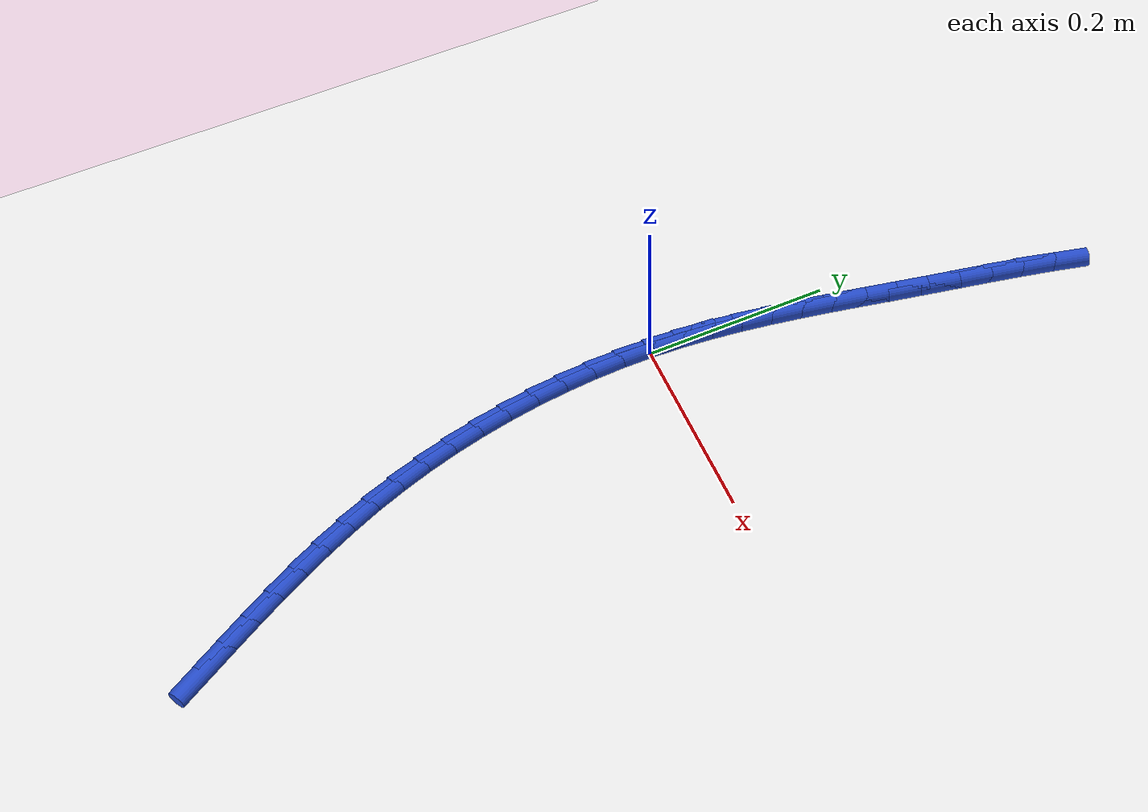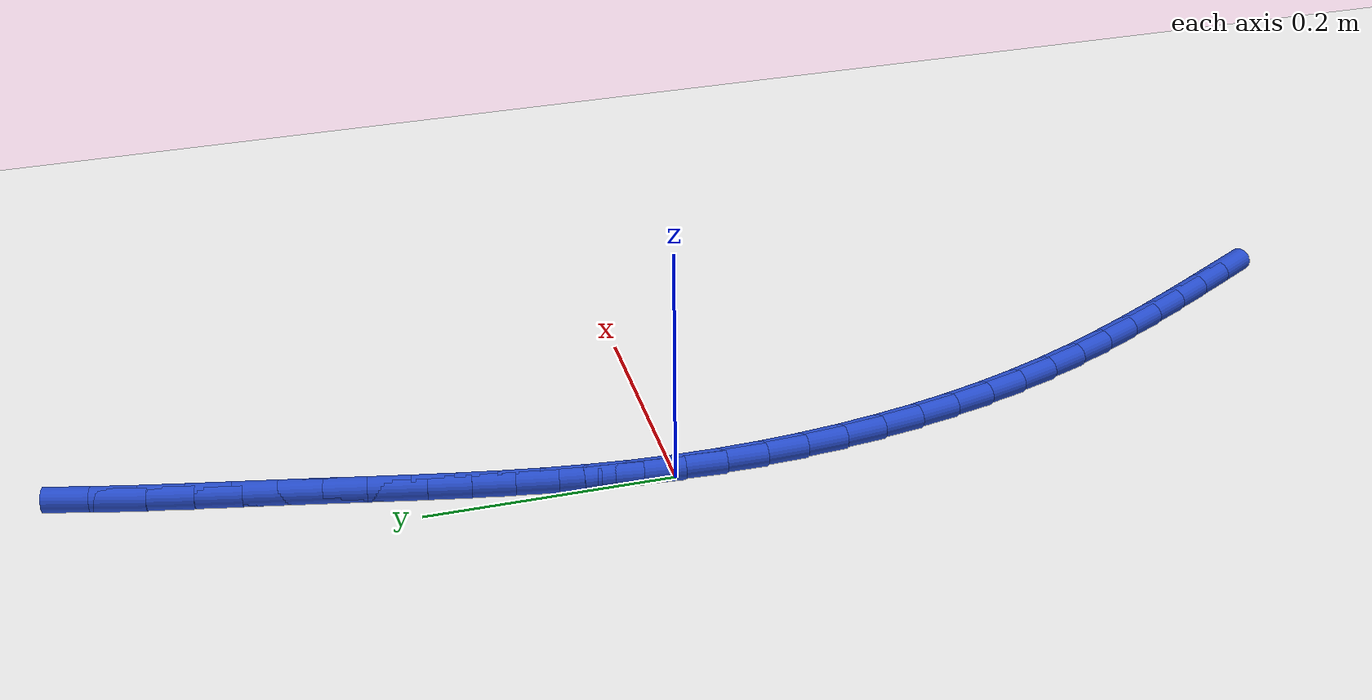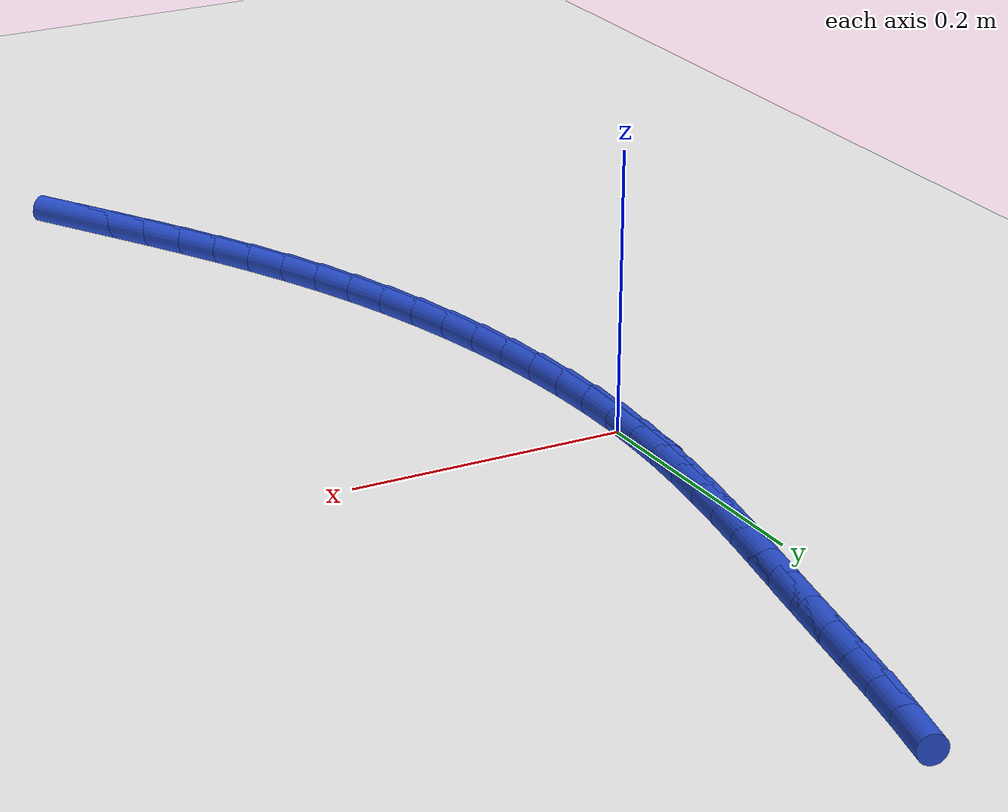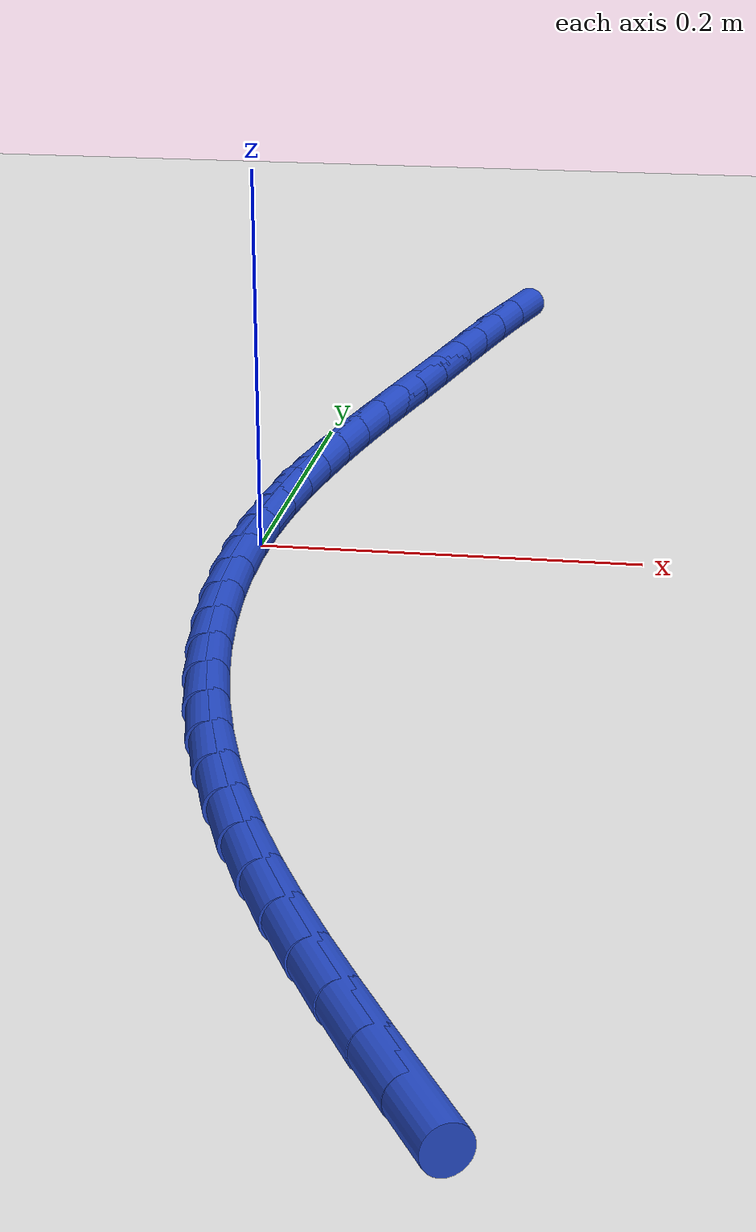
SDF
<sdf version="1.6">
 <world name="default">
  <model name="ground_plane">
   <static>1</static>
   <link name="link">
    <collision name="collision">
     <geometry><plane><normal>0 0 1</normal><size>100 100</size></plane></geometry>
     <surface><friction><ode><mu>100</mu><mu2>50</mu2></ode></friction></surface>
    </collision>
    <visual name="visual">
     <cast_shadows>0</cast_shadows>
     <geometry><plane><normal>0 0 1</normal><size>100 100</size></plane></geometry>
     <material>
      <script><uri>file://media/materials/scripts/gazebo.material</uri><name>Gazebo/WhiteGlow</name></script>
     </material>
    </visual>
   </link>
  </model>
  <model name="line">
   <link name="link_0">
    <pose>2.0816681711721685e-17 -4.163336342344337e-17 0.01 0 1.57 1.5177850047014827</pose>
    <collision name="collision">
     <geometry><cylinder><radius>0.01</radius><length>0.08</length></cylinder></geometry>
    </collision>
    <visual name="visual">
     <material>
      <script><name>Gazebo/Blue</name><uri>file://media/materials/scripts/gazebo.material</uri></script>
     </material>
     <geometry><cylinder><radius>0.01</radius><length>0.08</length></cylinder></geometry>
    </visual>
   </link>
   <link name="link_1">
    <pose>0.0017510972646374745 0.0330015660207481 0.01 0 1.57 1.479769540509891</pose>
    <collision name="collision">
     <geometry><cylinder><radius>0.01</radius><length>0.08</length></cylinder></geometry>
    </collision>
    <visual name="visual">
     <material>
      <script><name>Gazebo/Blue</name><uri>file://media/materials/scripts/gazebo.material</uri></script>
     </material>
     <geometry><cylinder><radius>0.01</radius><length>0.08</length></cylinder></geometry>
    </visual>
   </link>
   <link name="link_2">
    <pose>0.004742166672405374 0.06576998235816929 0.01 0 1.57 1.446837215099269</pose>
    <collision name="collision">
     <geometry><cylinder><radius>0.01</radius><length>0.08</length></cylinder></geometry>
    </collision>
    <visual name="visual">
     <material>
      <script><name>Gazebo/Blue</name><uri>file://media/materials/scripts/gazebo.material</uri></script>
     </material>
     <geometry><cylinder><radius>0.01</radius><length>0.08</length></cylinder></geometry>
    </visual>
   </link>
   <link name="link_3">
    <pose>0.008809686094679404 0.09841513725901559 0.01 0 1.57 1.4193394882834067</pose>
    <collision name="collision">
     <geometry><cylinder><radius>0.01</radius><length>0.08</length></cylinder></geometry>
    </collision>
    <visual name="visual">
     <material>
      <script><name>Gazebo/Blue</name><uri>file://media/materials/scripts/gazebo.material</uri></script>
     </material>
     <geometry><cylinder><radius>0.01</radius><length>0.08</length></cylinder></geometry>
    </visual>
   </link>
   <link name="link_4">
    <pose>0.013790133402835268 0.13104691897003926 0.01 0 1.57 1.3974794756898747</pose>
    <collision name="collision">
     <geometry><cylinder><radius>0.01</radius><length>0.08</length></cylinder></geometry>
    </collision>
    <visual name="visual">
     <material>
      <script><name>Gazebo/Blue</name><uri>file://media/materials/scripts/gazebo.material</uri></script>
     </material>
     <geometry><cylinder><radius>0.01</radius><length>0.08</length></cylinder></geometry>
    </visual>
   </link>
   <link name="link_5">
    <pose>0.01951998646824864 0.1637752157379924 0.01 0 1.57 1.3813310214950196</pose>
    <collision name="collision">
     <geometry><cylinder><radius>0.01</radius><length>0.08</length></cylinder></geometry>
    </collision>
    <visual name="visual">
     <material>
      <script><name>Gazebo/Blue</name><uri>file://media/materials/scripts/gazebo.material</uri></script>
     </material>
     <geometry><cylinder><radius>0.01</radius><length>0.08</length></cylinder></geometry>
    </visual>
   </link>
   <link name="link_6">
    <pose>0.02583572316229522 0.19670991580962716 0.01 0 1.57 1.3708602117803983</pose>
    <collision name="collision">
     <geometry><cylinder><radius>0.01</radius><length>0.08</length></cylinder></geometry>
    </collision>
    <visual name="visual">
     <material>
      <script><name>Gazebo/Blue</name><uri>file://media/materials/scripts/gazebo.material</uri></script>
     </material>
     <geometry><cylinder><radius>0.01</radius><length>0.08</length></cylinder></geometry>
    </visual>
   </link>
   <link name="link_7">
    <pose>0.032573821356350716 0.2299609074316959 0.01 0 1.57 1.3659456902525984</pose>
    <collision name="collision">
     <geometry><cylinder><radius>0.01</radius><length>0.08</length></cylinder></geometry>
    </collision>
    <visual name="visual">
     <material>
      <script><name>Gazebo/Blue</name><uri>file://media/materials/scripts/gazebo.material</uri></script>
     </material>
     <geometry><cylinder><radius>0.01</radius><length>0.08</length></cylinder></geometry>
    </visual>
   </link>
   <link name="link_8">
    <pose>0.03957075892179078 0.2636380788509505 0.01 0 1.57 1.3663956872044727</pose>
    <collision name="collision">
     <geometry><cylinder><radius>0.01</radius><length>0.08</length></cylinder></geometry>
    </collision>
    <visual name="visual">
     <material>
      <script><name>Gazebo/Blue</name><uri>file://media/materials/scripts/gazebo.material</uri></script>
     </material>
     <geometry><cylinder><radius>0.01</radius><length>0.08</length></cylinder></geometry>
    </visual>
   </link>
   <link name="link_9">
    <pose>0.04666301372999114 0.29785131831414324 0.01 0 1.57 1.371274127699775</pose>
    <collision name="collision">
     <geometry><cylinder><radius>0.01</radius><length>0.08</length></cylinder></geometry>
    </collision>
    <visual name="visual">
     <material>
      <script><name>Gazebo/Blue</name><uri>file://media/materials/scripts/gazebo.material</uri></script>
     </material>
     <geometry><cylinder><radius>0.01</radius><length>0.08</length></cylinder></geometry>
    </visual>
   </link>
   <link name="link_10">
    <pose>0.05370767862764933 0.3326892224893551 0.01 0 1.57 1.3728020281031887</pose>
    <collision name="collision">
     <geometry><cylinder><radius>0.01</radius><length>0.08</length></cylinder></geometry>
    </collision>
    <visual name="visual">
     <material>
      <script><name>Gazebo/Blue</name><uri>file://media/materials/scripts/gazebo.material</uri></script>
     </material>
     <geometry><cylinder><radius>0.01</radius><length>0.08</length></cylinder></geometry>
    </visual>
   </link>
   <link name="link_11">
    <pose>0.06079230001103776 0.368002370787589 0.01 0 1.57 1.366404610873969</pose>
    <collision name="collision">
     <geometry><cylinder><radius>0.01</radius><length>0.08</length></cylinder></geometry>
    </collision>
    <visual name="visual">
     <material>
      <script><name>Gazebo/Blue</name><uri>file://media/materials/scripts/gazebo.material</uri></script>
     </material>
     <geometry><cylinder><radius>0.01</radius><length>0.08</length></cylinder></geometry>
    </visual>
   </link>
   <link name="link_12">
    <pose>0.06814885094772555 0.40349217572606627 0.01 0 1.57 1.3520287828510378</pose>
    <collision name="collision">
     <geometry><cylinder><radius>0.01</radius><length>0.08</length></cylinder></geometry>
    </collision>
    <visual name="visual">
     <material>
      <script><name>Gazebo/Blue</name><uri>file://media/materials/scripts/gazebo.material</uri></script>
     </material>
     <geometry><cylinder><radius>0.01</radius><length>0.08</length></cylinder></geometry>
    </visual>
   </link>
   <link name="link_13">
    <pose>0.07601152755418306 0.43885775381050113 0.01 0 1.57 1.3293796384983325</pose>
    <collision name="collision">
     <geometry><cylinder><radius>0.01</radius><length>0.08</length></cylinder></geometry>
    </collision>
    <visual name="visual">
     <material>
      <script><name>Gazebo/Blue</name><uri>file://media/materials/scripts/gazebo.material</uri></script>
     </material>
     <geometry><cylinder><radius>0.01</radius><length>0.08</length></cylinder></geometry>
    </visual>
   </link>
   <link name="link_183">
    <pose>0.1629252732335252 -0.5390335186436166 0.01 0 1.57 -1.0507017068955904</pose>
    <collision name="collision">
     <geometry><cylinder><radius>0.01</radius><length>0.08</length></cylinder></geometry>
    </collision>
    <visual name="visual">
     <material>
      <script><name>Gazebo/Blue</name><uri>file://media/materials/scripts/gazebo.material</uri></script>
     </material>
     <geometry><cylinder><radius>0.01</radius><length>0.08</length></cylinder></geometry>
    </visual>
   </link>
   <link name="link_184">
    <pose>0.14608502645921312 -0.5096278698694084 0.01 0 1.57 -1.058671495034013</pose>
    <collision name="collision">
     <geometry><cylinder><radius>0.01</radius><length>0.08</length></cylinder></geometry>
    </collision>
    <visual name="visual">
     <material>
      <script><name>Gazebo/Blue</name><uri>file://media/materials/scripts/gazebo.material</uri></script>
     </material>
     <geometry><cylinder><radius>0.01</radius><length>0.08</length></cylinder></geometry>
    </visual>
   </link>
   <link name="link_185">
    <pose>0.1295779752552423 -0.48026381848474986 0.01 0 1.57 -1.0719618900365238</pose>
    <collision name="collision">
     <geometry><cylinder><radius>0.01</radius><length>0.08</length></cylinder></geometry>
    </collision>
    <visual name="visual">
     <material>
      <script><name>Gazebo/Blue</name><uri>file://media/materials/scripts/gazebo.material</uri></script>
     </material>
     <geometry><cylinder><radius>0.01</radius><length>0.08</length></cylinder></geometry>
    </visual>
   </link>
   <link name="link_186">
    <pose>0.11354364487065514 -0.45083168963183484 0.01 0 1.57 -1.0906140924586643</pose>
    <collision name="collision">
     <geometry><cylinder><radius>0.01</radius><length>0.08</length></cylinder></geometry>
    </collision>
    <visual name="visual">
     <material>
      <script><name>Gazebo/Blue</name><uri>file://media/materials/scripts/gazebo.material</uri></script>
     </material>
     <geometry><cylinder><radius>0.01</radius><length>0.08</length></cylinder></geometry>
    </visual>
   </link>
   <link name="link_187">
    <pose>0.09812156055449404 -0.4212218084528571 0.01 0 1.57 -1.114624344205345</pose>
    <collision name="collision">
     <geometry><cylinder><radius>0.01</radius><length>0.08</length></cylinder></geometry>
    </collision>
    <visual name="visual">
     <material>
      <script><name>Gazebo/Blue</name><uri>file://media/materials/scripts/gazebo.material</uri></script>
     </material>
     <geometry><cylinder><radius>0.01</radius><length>0.08</length></cylinder></geometry>
    </visual>
   </link>
   <link name="link_188">
    <pose>0.08345124755580148 -0.3913245000900107 0.01 0 1.57 -1.1439273001818315</pose>
    <collision name="collision">
     <geometry><cylinder><radius>0.01</radius><length>0.08</length></cylinder></geometry>
    </collision>
    <visual name="visual">
     <material>
      <script><name>Gazebo/Blue</name><uri>file://media/materials/scripts/gazebo.material</uri></script>
     </material>
     <geometry><cylinder><radius>0.01</radius><length>0.08</length></cylinder></geometry>
    </visual>
   </link>
   <link name="link_189">
    <pose>0.06967223112361981 -0.3610300896854894 0.01 0 1.57 -1.1783764700805157</pose>
    <collision name="collision">
     <geometry><cylinder><radius>0.01</radius><length>0.08</length></cylinder></geometry>
    </collision>
    <visual name="visual">
     <material>
      <script><name>Gazebo/Blue</name><uri>file://media/materials/scripts/gazebo.material</uri></script>
     </material>
     <geometry><cylinder><radius>0.01</radius><length>0.08</length></cylinder></geometry>
    </visual>
   </link>
   <link name="link_190">
    <pose>0.056924036506991495 -0.3302289023814873 0.01 0 1.57 -1.217691627651026</pose>
    <collision name="collision">
     <geometry><cylinder><radius>0.01</radius><length>0.08</length></cylinder></geometry>
    </collision>
    <visual name="visual">
     <material>
      <script><name>Gazebo/Blue</name><uri>file://media/materials/scripts/gazebo.material</uri></script>
     </material>
     <geometry><cylinder><radius>0.01</radius><length>0.08</length></cylinder></geometry>
    </visual>
   </link>
   <link name="link_191">
    <pose>0.04534549218835313 -0.2988124961845329 0.01 0 1.57 -1.2595056860768161</pose>
    <collision name="collision">
     <geometry><cylinder><radius>0.01</radius><length>0.08</length></cylinder></geometry>
    </collision>
    <visual name="visual">
     <material>
      <script><name>Gazebo/Blue</name><uri>file://media/materials/scripts/gazebo.material</uri></script>
     </material>
     <geometry><cylinder><radius>0.01</radius><length>0.08</length></cylinder></geometry>
    </visual>
   </link>
   <link name="link_192">
    <pose>0.03503015923317359 -0.2667525256262184 0.01 0 1.57 -1.3005869958924705</pose>
    <collision name="collision">
     <geometry><cylinder><radius>0.01</radius><length>0.08</length></cylinder></geometry>
    </collision>
    <visual name="visual">
     <material>
      <script><name>Gazebo/Blue</name><uri>file://media/materials/scripts/gazebo.material</uri></script>
     </material>
     <geometry><cylinder><radius>0.01</radius><length>0.08</length></cylinder></geometry>
    </visual>
   </link>
   <link name="link_193">
    <pose>0.025999368025242435 -0.23414845077670604 0.01 0 1.57 -1.3409134345487472</pose>
    <collision name="collision">
     <geometry><cylinder><radius>0.01</radius><length>0.08</length></cylinder></geometry>
    </collision>
    <visual name="visual">
     <material>
      <script><name>Gazebo/Blue</name><uri>file://media/materials/scripts/gazebo.material</uri></script>
     </material>
     <geometry><cylinder><radius>0.01</radius><length>0.08</length></cylinder></geometry>
    </visual>
   </link>
   <link name="link_194">
    <pose>0.018267987630123144 -0.20111116441365595 0.01 0 1.57 -1.3807562419942665</pose>
    <collision name="collision">
     <geometry><cylinder><radius>0.01</radius><length>0.08</length></cylinder></geometry>
    </collision>
    <visual name="visual">
     <material>
      <script><name>Gazebo/Blue</name><uri>file://media/materials/scripts/gazebo.material</uri></script>
     </material>
     <geometry><cylinder><radius>0.01</radius><length>0.08</length></cylinder></geometry>
    </visual>
   </link>
   <link name="link_195">
    <pose>0.01185088711337902 -0.16775155931472785 0.01 0 1.57 -1.42038320877371</pose>
    <collision name="collision">
     <geometry><cylinder><radius>0.01</radius><length>0.08</length></cylinder></geometry>
    </collision>
    <visual name="visual">
     <material>
      <script><name>Gazebo/Blue</name><uri>file://media/materials/scripts/gazebo.material</uri></script>
     </material>
     <geometry><cylinder><radius>0.01</radius><length>0.08</length></cylinder></geometry>
    </visual>
   </link>
   <link name="link_196">
    <pose>0.006762935540573313 -0.1341805282575812 0.01 0 1.57 -1.4600614043058477</pose>
    <collision name="collision">
     <geometry><cylinder><radius>0.01</radius><length>0.08</length></cylinder></geometry>
    </collision>
    <visual name="visual">
     <material>
      <script><name>Gazebo/Blue</name><uri>file://media/materials/scripts/gazebo.material</uri></script>
     </material>
     <geometry><cylinder><radius>0.01</radius><length>0.08</length></cylinder></geometry>
    </visual>
   </link>
   <link name="link_197">
    <pose>0.00301900197726929 -0.10050896401987552 0.01 0 1.57 -1.5000600821007495</pose>
    <collision name="collision">
     <geometry><cylinder><radius>0.01</radius><length>0.08</length></cylinder></geometry>
    </collision>
    <visual name="visual">
     <material>
      <script><name>Gazebo/Blue</name><uri>file://media/materials/scripts/gazebo.material</uri></script>
     </material>
     <geometry><cylinder><radius>0.01</radius><length>0.08</length></cylinder></geometry>
    </visual>
   </link>
   <link name="link_198">
    <pose>0.0006339554890302185 -0.06684775937927039 0.01 0 1.57 -1.5406536467678498</pose>
    <collision name="collision">
     <geometry><cylinder><radius>0.01</radius><length>0.08</length></cylinder></geometry>
    </collision>
    <visual name="visual">
     <material>
      <script><name>Gazebo/Blue</name><uri>file://media/materials/scripts/gazebo.material</uri></script>
     </material>
     <geometry><cylinder><radius>0.01</radius><length>0.08</length></cylinder></geometry>
    </visual>
   </link>
   <link name="link_199">
    <pose>-0.00037733485858062847 -0.03330780711342535 0.01 0 1.57 1.5594680902597469</pose>
    <collision name="collision">
     <geometry><cylinder><radius>0.01</radius><length>0.08</length></cylinder></geometry>
    </collision>
    <visual name="visual">
     <material>
      <script><name>Gazebo/Blue</name><uri>file://media/materials/scripts/gazebo.material</uri></script>
     </material>
     <geometry><cylinder><radius>0.01</radius><length>0.08</length></cylinder></geometry>
    </visual>
   </link>
   <link name="link_200">
    <pose>1.0408340855860843e-17 8.326672684688674e-17 0.01 0 1.57 1.5168265944846342</pose>
    <collision name="collision">
     <geometry><cylinder><radius>0.01</radius><length>0.08</length></cylinder></geometry>
    </collision>
    <visual name="visual">
     <material>
      <script><name>Gazebo/Blue</name><uri>file://media/materials/scripts/gazebo.material</uri></script>
     </material>
     <geometry><cylinder><radius>0.01</radius><length>0.08</length></cylinder></geometry>
    </visual>
   </link>
   <link name="link_201">
    <pose>0.0017808291303354554 0.03296476918334705 0.01 0 1.57 1.5168265944846349</pose>
    <collision name="collision">
     <geometry><cylinder><radius>0.01</radius><length>0.08</length></cylinder></geometry>
    </collision>
    <visual name="visual">
     <material>
      <script><name>Gazebo/Blue</name><uri>file://media/materials/scripts/gazebo.material</uri></script>
     </material>
     <geometry><cylinder><radius>0.01</radius><length>0.08</length></cylinder></geometry>
    </visual>
   </link>
  </model>
 </world>
</sdf>
